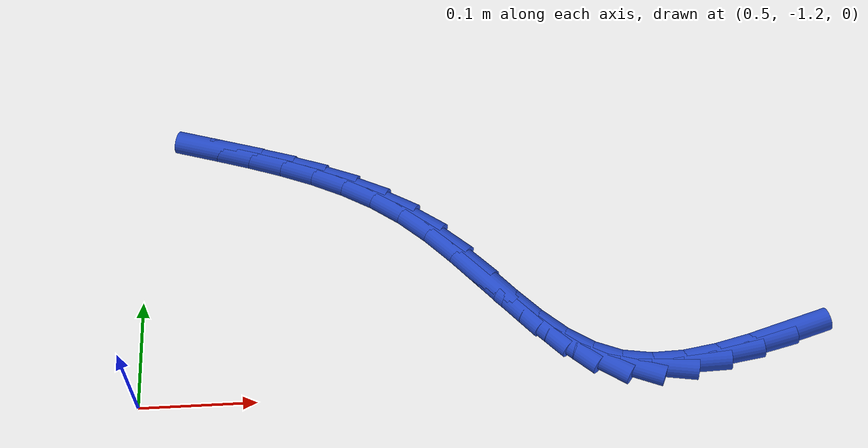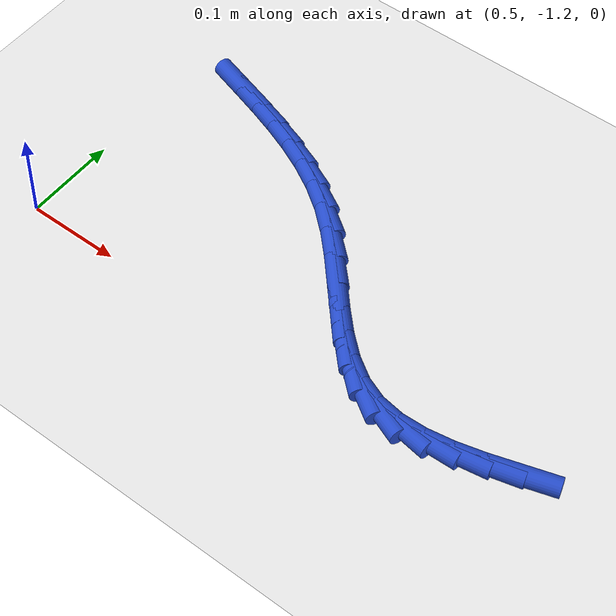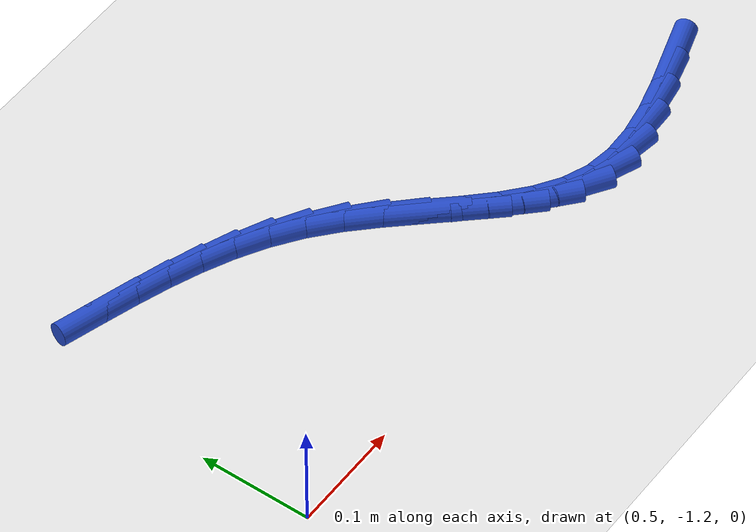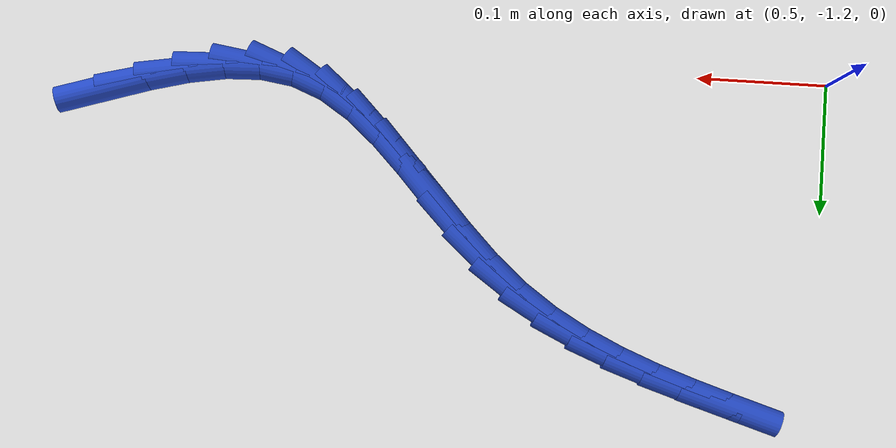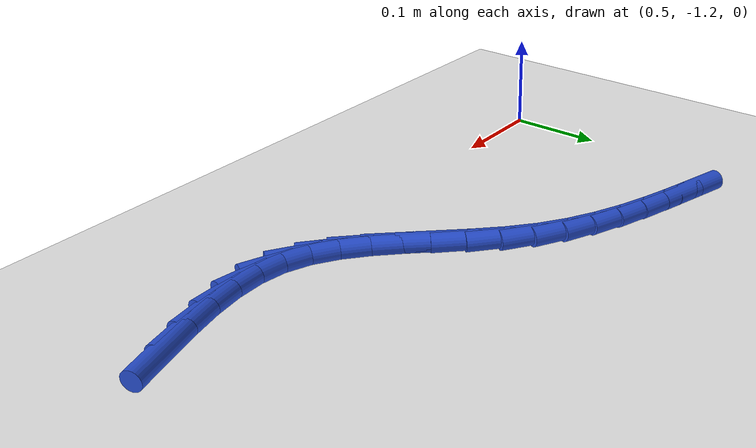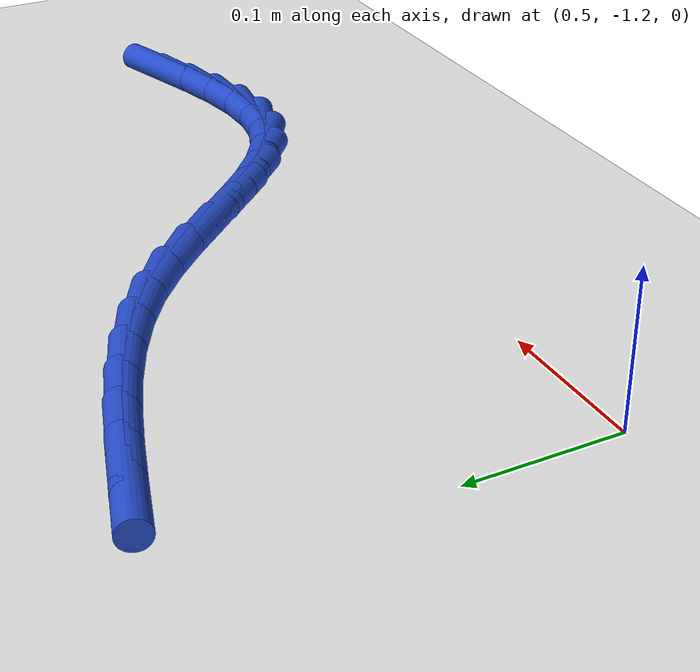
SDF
<sdf version="1.6">
 <world name="default">
  <model name="ground_plane">
   <static>1</static>
   <link name="link">
    <collision name="collision">
     <geometry><plane><normal>0 0 1</normal><size>100 100</size></plane></geometry>
     <surface><friction><ode><mu>100</mu><mu2>50</mu2></ode></friction></surface>
    </collision>
    <visual name="visual">
     <cast_shadows>0</cast_shadows>
     <geometry><plane><normal>0 0 1</normal><size>100 100</size></plane></geometry>
     <material>
      <script><uri>file://media/materials/scripts/gazebo.material</uri><name>Gazebo/WhiteGlow</name></script>
     </material>
    </visual>
   </link>
  </model>
  <model name="line">
   <link name="link_182">
    <pose>1.0521552715868667 -1.1641392549674372 0.01 0 1.57 0.3043449595156646</pose>
    <collision name="collision">
     <geometry><cylinder><radius>0.01</radius><length>0.08</length></cylinder></geometry>
    </collision>
    <visual name="visual">
     <material>
      <script><name>Gazebo/Blue</name><uri>file://media/materials/scripts/gazebo.material</uri></script>
     </material>
     <geometry><cylinder><radius>0.01</radius><length>0.08</length></cylinder></geometry>
    </visual>
   </link>
   <link name="link_183">
    <pose>1.0216532280306019 -1.173720050888108 0.01 0 1.57 0.25238314509058574</pose>
    <collision name="collision">
     <geometry><cylinder><radius>0.01</radius><length>0.08</length></cylinder></geometry>
    </collision>
    <visual name="visual">
     <material>
      <script><name>Gazebo/Blue</name><uri>file://media/materials/scripts/gazebo.material</uri></script>
     </material>
     <geometry><cylinder><radius>0.01</radius><length>0.08</length></cylinder></geometry>
    </visual>
   </link>
   <link name="link_184">
    <pose>0.9918181816660103 -1.1814139722150392 0.01 0 1.57 0.16461357422800882</pose>
    <collision name="collision">
     <geometry><cylinder><radius>0.01</radius><length>0.08</length></cylinder></geometry>
    </collision>
    <visual name="visual">
     <material>
      <script><name>Gazebo/Blue</name><uri>file://media/materials/scripts/gazebo.material</uri></script>
     </material>
     <geometry><cylinder><radius>0.01</radius><length>0.08</length></cylinder></geometry>
    </visual>
   </link>
   <link name="link_185">
    <pose>0.962924063035702 -1.1862137692525054 0.01 0 1.57 0.032446955973348346</pose>
    <collision name="collision">
     <geometry><cylinder><radius>0.01</radius><length>0.08</length></cylinder></geometry>
    </collision>
    <visual name="visual">
     <material>
      <script><name>Gazebo/Blue</name><uri>file://media/materials/scripts/gazebo.material</uri></script>
     </material>
     <geometry><cylinder><radius>0.01</radius><length>0.08</length></cylinder></geometry>
    </visual>
   </link>
   <link name="link_186">
    <pose>0.935244802682289 -1.1871121923047783 0.01 0 1.57 -0.15193673922680162</pose>
    <collision name="collision">
     <geometry><cylinder><radius>0.01</radius><length>0.08</length></cylinder></geometry>
    </collision>
    <visual name="visual">
     <material>
      <script><name>Gazebo/Blue</name><uri>file://media/materials/scripts/gazebo.material</uri></script>
     </material>
     <geometry><cylinder><radius>0.01</radius><length>0.08</length></cylinder></geometry>
    </visual>
   </link>
   <link name="link_187">
    <pose>0.9090543311483811 -1.1831019916761318 0.01 0 1.57 -0.3801611237127839</pose>
    <collision name="collision">
     <geometry><cylinder><radius>0.01</radius><length>0.08</length></cylinder></geometry>
    </collision>
    <visual name="visual">
     <material>
      <script><name>Gazebo/Blue</name><uri>file://media/materials/scripts/gazebo.material</uri></script>
     </material>
     <geometry><cylinder><radius>0.01</radius><length>0.08</length></cylinder></geometry>
    </visual>
   </link>
   <link name="link_188">
    <pose>0.8845790918183963 -1.1733216967761368 0.01 0 1.57 -0.5800739038097688</pose>
    <collision name="collision">
     <geometry><cylinder><radius>0.01</radius><length>0.08</length></cylinder></geometry>
    </collision>
    <visual name="visual">
     <material>
      <script><name>Gazebo/Blue</name><uri>file://media/materials/scripts/gazebo.material</uri></script>
     </material>
     <geometry><cylinder><radius>0.01</radius><length>0.08</length></cylinder></geometry>
    </visual>
   </link>
   <link name="link_189">
    <pose>0.8616036116763894 -1.1582664601502364 0.01 0 1.57 -0.7164345032171975</pose>
    <collision name="collision">
     <geometry><cylinder><radius>0.01</radius><length>0.08</length></cylinder></geometry>
    </collision>
    <visual name="visual">
     <material>
      <script><name>Gazebo/Blue</name><uri>file://media/materials/scripts/gazebo.material</uri></script>
     </material>
     <geometry><cylinder><radius>0.01</radius><length>0.08</length></cylinder></geometry>
    </visual>
   </link>
   <link name="link_190">
    <pose>0.8396721565856502 -1.1391690032478896 0.01 0 1.57 -0.798208849838477</pose>
    <collision name="collision">
     <geometry><cylinder><radius>0.01</radius><length>0.08</length></cylinder></geometry>
    </collision>
    <visual name="visual">
     <material>
      <script><name>Gazebo/Blue</name><uri>file://media/materials/scripts/gazebo.material</uri></script>
     </material>
     <geometry><cylinder><radius>0.01</radius><length>0.08</length></cylinder></geometry>
    </visual>
   </link>
   <link name="link_191">
    <pose>0.8183265940203877 -1.1172694102462417 0.01 0 1.57 -0.8355769123747167</pose>
    <collision name="collision">
     <geometry><cylinder><radius>0.01</radius><length>0.08</length></cylinder></geometry>
    </collision>
    <visual name="visual">
     <material>
      <script><name>Gazebo/Blue</name><uri>file://media/materials/scripts/gazebo.material</uri></script>
     </material>
     <geometry><cylinder><radius>0.01</radius><length>0.08</length></cylinder></geometry>
    </visual>
   </link>
   <link name="link_192">
    <pose>0.7971087914548102 -1.0938077653224365 0.01 0 1.57 -0.8346710537087622</pose>
    <collision name="collision">
     <geometry><cylinder><radius>0.01</radius><length>0.08</length></cylinder></geometry>
    </collision>
    <visual name="visual">
     <material>
      <script><name>Gazebo/Blue</name><uri>file://media/materials/scripts/gazebo.material</uri></script>
     </material>
     <geometry><cylinder><radius>0.01</radius><length>0.08</length></cylinder></geometry>
    </visual>
   </link>
   <link name="link_193">
    <pose>0.7755606163631272 -1.0700241526536192 0.01 0 1.57 -0.7970965375036697</pose>
    <collision name="collision">
     <geometry><cylinder><radius>0.01</radius><length>0.08</length></cylinder></geometry>
    </collision>
    <visual name="visual">
     <material>
      <script><name>Gazebo/Blue</name><uri>file://media/materials/scripts/gazebo.material</uri></script>
     </material>
     <geometry><cylinder><radius>0.01</radius><length>0.08</length></cylinder></geometry>
    </visual>
   </link>
   <link name="link_194">
    <pose>0.7532239362195478 -1.0471586564169355 0.01 0 1.57 -0.7205992613126406</pose>
    <collision name="collision">
     <geometry><cylinder><radius>0.01</radius><length>0.08</length></cylinder></geometry>
    </collision>
    <visual name="visual">
     <material>
      <script><name>Gazebo/Blue</name><uri>file://media/materials/scripts/gazebo.material</uri></script>
     </material>
     <geometry><cylinder><radius>0.01</radius><length>0.08</length></cylinder></geometry>
    </visual>
   </link>
   <link name="link_195">
    <pose>0.729641203464693 -1.0264499819724968 0.01 0 1.57 -0.6158987182139368</pose>
    <collision name="collision">
     <geometry><cylinder><radius>0.01</radius><length>0.08</length></cylinder></geometry>
    </collision>
    <visual name="visual">
     <material>
      <script><name>Gazebo/Blue</name><uri>file://media/materials/scripts/gazebo.material</uri></script>
     </material>
     <geometry><cylinder><radius>0.01</radius><length>0.08</length></cylinder></geometry>
    </visual>
   </link>
   <link name="link_196">
    <pose>0.7045450569623513 -1.0086885486360146 0.01 0 1.57 -0.5197278206173236</pose>
    <collision name="collision">
     <geometry><cylinder><radius>0.01</radius><length>0.08</length></cylinder></geometry>
    </collision>
    <visual name="visual">
     <material>
      <script><name>Gazebo/Blue</name><uri>file://media/materials/scripts/gazebo.material</uri></script>
     </material>
     <geometry><cylinder><radius>0.01</radius><length>0.08</length></cylinder></geometry>
    </visual>
   </link>
   <link name="link_197">
    <pose>0.6781307785086104 -0.9935742858415448 0.01 0 1.57 -0.4399507584282591</pose>
    <collision name="collision">
     <geometry><cylinder><radius>0.01</radius><length>0.08</length></cylinder></geometry>
    </collision>
    <visual name="visual">
     <material>
      <script><name>Gazebo/Blue</name><uri>file://media/materials/scripts/gazebo.material</uri></script>
     </material>
     <geometry><cylinder><radius>0.01</radius><length>0.08</length></cylinder></geometry>
    </visual>
   </link>
   <link name="link_198">
    <pose>0.6506626519861126 -0.980644479066112 0.01 0 1.57 -0.37760448105676037</pose>
    <collision name="collision">
     <geometry><cylinder><radius>0.01</radius><length>0.08</length></cylinder></geometry>
    </collision>
    <visual name="visual">
     <material>
      <script><name>Gazebo/Blue</name><uri>file://media/materials/scripts/gazebo.material</uri></script>
     </material>
     <geometry><cylinder><radius>0.01</radius><length>0.08</length></cylinder></geometry>
    </visual>
   </link>
   <link name="link_199">
    <pose>0.6224049612775002 -0.969436413786741 0.01 0 1.57 -0.3328006398799434</pose>
    <collision name="collision">
     <geometry><cylinder><radius>0.01</radius><length>0.08</length></cylinder></geometry>
    </collision>
    <visual name="visual">
     <material>
      <script><name>Gazebo/Blue</name><uri>file://media/materials/scripts/gazebo.material</uri></script>
     </material>
     <geometry><cylinder><radius>0.01</radius><length>0.08</length></cylinder></geometry>
    </visual>
   </link>
   <link name="link_200">
    <pose>0.5936219902654148 -0.9594873754804564 0.01 0 1.57 -0.3052822298700104</pose>
    <collision name="collision">
     <geometry><cylinder><radius>0.01</radius><length>0.08</length></cylinder></geometry>
    </collision>
    <visual name="visual">
     <material>
      <script><name>Gazebo/Blue</name><uri>file://media/materials/scripts/gazebo.material</uri></script>
     </material>
     <geometry><cylinder><radius>0.01</radius><length>0.08</length></cylinder></geometry>
    </visual>
   </link>
   <link name="link_201">
    <pose>0.5645780228325005 -0.9503346496242838 0.01 0 1.57 -0.29483122230638287</pose>
    <collision name="collision">
     <geometry><cylinder><radius>0.01</radius><length>0.08</length></cylinder></geometry>
    </collision>
    <visual name="visual">
     <material>
      <script><name>Gazebo/Blue</name><uri>file://media/materials/scripts/gazebo.material</uri></script>
     </material>
     <geometry><cylinder><radius>0.01</radius><length>0.08</length></cylinder></geometry>
    </visual>
   </link>
  </model>
 </world>
</sdf>
